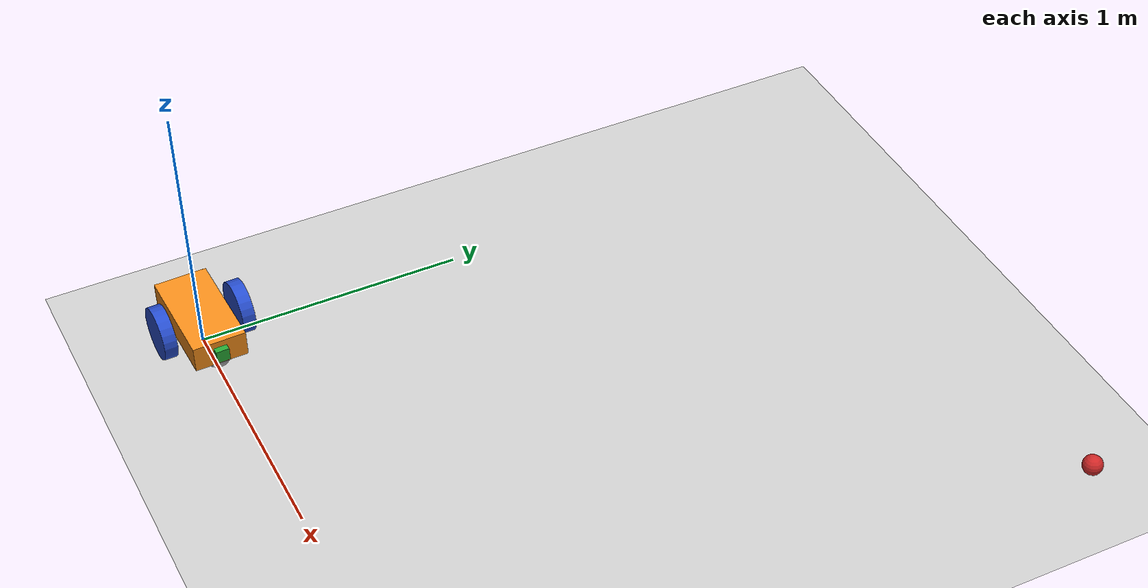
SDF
<sdf version="1.6">
 <world name="default">
  <model name="ground_plane">
   <static>1</static>
   <link name="link">
    <collision name="collision">
     <geometry><plane><normal>0 0 1</normal><size>100 100</size></plane></geometry>
     <surface><friction><ode><mu>100</mu><mu2>50</mu2></ode></friction></surface>
    </collision>
    <visual name="visual">
     <cast_shadows>0</cast_shadows>
     <geometry><plane><normal>0 0 1</normal><size>100 100</size></plane></geometry>
     <material>
      <script><uri>file://media/materials/scripts/gazebo.material</uri><name>Gazebo/Grey</name></script>
     </material>
    </visual>
   </link>
  </model>
  <light name="sun" type="directional">
   <pose>0 0 10 0 -0 0</pose>
   <diffuse>0.8 0.8 0.8 1</diffuse>
   <specular>0.2 0.2 0.2 1</specular>
   <attenuation>
    <range>1000</range>
    <constant>0.9</constant>
    <linear>0.01</linear>
    <quadratic>0.001</quadratic>
   </attenuation>
   <direction>-0.5 0.1 -0.9</direction>
  </light>
  <gravity>0 0 -9.8</gravity>
  <magnetic_field>6e-06 2.3e-05 -4.2e-05</magnetic_field>
  <atmosphere type="adiabatic"/>
  <physics name="default_physics" default="0" type="ode">
   <max_step_size>0.001</max_step_size>
   <real_time_factor>1</real_time_factor>
   <real_time_update_rate>1000</real_time_update_rate>
  </physics>
  <scene><ambient>0.4 0.4 0.4 1</ambient><background>0.7 0.7 0.7 1</background><shadows>1</shadows></scene>
  <spherical_coordinates>
   <surface_model>EARTH_WGS84</surface_model>
   <latitude_deg>0</latitude_deg>
   <longitude_deg>0</longitude_deg>
   <elevation>0</elevation>
   <heading_deg>0</heading_deg>
  </spherical_coordinates>
  <model name="myrobot">
   <link name="chassis">
    <inertial>
     <pose>0.001325 0 0.099338 0 -0 0</pose>
     <mass>15.1</mass>
     <inertia>
      <ixx>0.100994</ixx>
      <ixy>0</ixy>
      <ixz>0.00198675</ixz>
      <iyy>0.104968</iyy>
      <iyz>0</iyz>
      <izz>0.103975</izz>
     </inertia>
    </inertial>
    <collision name="chassis_fixed_joint_lump__collision_collision">
     <geometry><box><size>0.4 0.2 0.1</size></box></geometry>
    </collision>
    <collision name="chassis_fixed_joint_lump__caster_collision_collision_1">
     <pose>-0.15 0 -0.05 0 -0 0</pose>
     <geometry><sphere><radius>0.05</radius></sphere></geometry>
    </collision>
    <collision name="chassis_fixed_joint_lump__caster_front_collision_collision_2">
     <pose>0.15 0 -0.05 0 -0 0</pose>
     <geometry><sphere><radius>0.05</radius></sphere></geometry>
    </collision>
    <collision name="chassis_fixed_joint_lump__camera_collision_3">
     <pose>0.2 0 0 0 -0 0</pose>
     <geometry><box><size>0.05 0.05 0.05</size></box></geometry>
    </collision>
    <visual name="chassis_visual_visual">
     <geometry><box><size>0.4 0.2 0.1</size></box></geometry>
     <material>
      <script><name>Gazebo/Orange</name><uri>file://media/materials/scripts/gazebo.material</uri></script>
     </material>
    </visual>
    <visual name="chassis_fixed_joint_lump__caster_visual_visual_1">
     <pose>-0.15 0 -0.05 0 -0 0</pose>
     <geometry><sphere><radius>0.05</radius></sphere></geometry>
    </visual>
    <visual name="chassis_fixed_joint_lump__caster_front_visual_visual_2">
     <pose>0.15 0 -0.05 0 -0 0</pose>
     <geometry><sphere><radius>0.05</radius></sphere></geometry>
    </visual>
    <visual name="chassis_fixed_joint_lump__camera_visual_3">
     <pose>0.2 0 0 0 -0 0</pose>
     <geometry><box><size>0.05 0.05 0.05</size></box></geometry>
     <material>
      <script><name>Gazebo/Green</name><uri>file://media/materials/scripts/gazebo.material</uri></script>
     </material>
    </visual>
    <sensor name="camera1" type="camera">
     <update_rate>30</update_rate>
     <camera name="head">
      <horizontal_fov>1.39626</horizontal_fov>
      <image><width>800</width><height>800</height><format>R8G8B8</format></image>
      <clip><near>0.02</near><far>300</far></clip>
     </camera>
     <plugin name="camera_controller" filename="libgazebo_ros_camera.so">
      <alwaysOn>true</alwaysOn>
      <updateRate>0.0</updateRate>
      <cameraName>mybot/camera1</cameraName>
      <imageTopicName>image_raw</imageTopicName>
      <cameraInfoTopicName>camera_info</cameraInfoTopicName>
      <frameName>camera</frameName>
      <hackBaseline>0.07</hackBaseline>
      <distortionK1>0.0</distortionK1>
      <distortionK2>0.0</distortionK2>
      <distortionK3>0.0</distortionK3>
      <distortionT1>0.0</distortionT1>
      <distortionT2>0.0</distortionT2>
      <robotNamespace>/</robotNamespace>
     </plugin>
     <pose>0.2 0 0 0 -0 0</pose>
    </sensor>
   </link>
   <link name="left_wheel">
    <pose>0 0.15 0 0 -0 0</pose>
    <inertial>
     <pose>0 0 0 -0 1.5707 1.5707</pose>
     <mass>5</mass>
     <inertia><ixx>0.1</ixx><ixy>0</ixy><ixz>0</ixz><iyy>0.1</iyy><iyz>0</iyz><izz>0.1</izz></inertia>
    </inertial>
    <collision name="left_wheel_fixed_joint_lump__collision_collision">
     <pose>0 0 0 -0 1.5707 1.5707</pose>
     <geometry><cylinder><length>0.05</length><radius>0.1</radius></cylinder></geometry>
    </collision>
    <visual name="left_wheel_visual_visual">
     <pose>0 0 0 -0 1.5707 1.5707</pose>
     <geometry><cylinder><length>0.05</length><radius>0.1</radius></cylinder></geometry>
     <material>
      <script><name>Gazebo/Blue</name><uri>file://media/materials/scripts/gazebo.material</uri></script>
     </material>
    </visual>
   </link>
   <joint name="left_wheel_hinge" type="revolute">
    <child>left_wheel</child>
    <parent>chassis</parent>
    <axis>
     <xyz>0 1 0</xyz>
     <limit><lower>-1e+16</lower><upper>1e+16</upper></limit>
     <dynamics><spring_reference>0</spring_reference><spring_stiffness>0</spring_stiffness></dynamics>
     <use_parent_model_frame>1</use_parent_model_frame>
    </axis>
   </joint>
   <link name="right_wheel">
    <pose>0 -0.15 0 0 -0 0</pose>
    <inertial>
     <pose>0 0 0 -0 1.5707 1.5707</pose>
     <mass>5</mass>
     <inertia><ixx>0.1</ixx><ixy>0</ixy><ixz>0</ixz><iyy>0.1</iyy><iyz>0</iyz><izz>0.1</izz></inertia>
    </inertial>
    <collision name="right_wheel_fixed_joint_lump__collision_collision">
     <pose>0 0 0 -0 1.5707 1.5707</pose>
     <geometry><cylinder><length>0.05</length><radius>0.1</radius></cylinder></geometry>
    </collision>
    <visual name="right_wheel_visual_visual">
     <pose>0 0 0 -0 1.5707 1.5707</pose>
     <geometry><cylinder><length>0.05</length><radius>0.1</radius></cylinder></geometry>
     <material>
      <script><name>Gazebo/Blue</name><uri>file://media/materials/scripts/gazebo.material</uri></script>
     </material>
    </visual>
   </link>
   <joint name="right_wheel_hinge" type="revolute">
    <child>right_wheel</child>
    <parent>chassis</parent>
    <axis>
     <xyz>0 1 0</xyz>
     <limit><lower>-1e+16</lower><upper>1e+16</upper></limit>
     <dynamics><spring_reference>0</spring_reference><spring_stiffness>0</spring_stiffness></dynamics>
     <use_parent_model_frame>1</use_parent_model_frame>
    </axis>
   </joint>
   <static>0</static>
   <plugin name="differential_drive_controller" filename="libgazebo_ros_diff_drive.so">
    <legacyMode>false</legacyMode>
    <alwaysOn>true</alwaysOn>
    <updateRate>10</updateRate>
    <leftJoint>left_wheel_hinge</leftJoint>
    <rightJoint>right_wheel_hinge</rightJoint>
    <wheelSeparation>0.4</wheelSeparation>
    <wheelDiameter>0.2</wheelDiameter>
    <torque>10</torque>
    <commandTopic>cmd_vel</commandTopic>
    <odometryTopic>odom</odometryTopic>
    <odometryFrame>odom</odometryFrame>
    <robotBaseFrame>chassis</robotBaseFrame>
    <robotNamespace>/</robotNamespace>
   </plugin>
   <pose>-0.001741 0.004607 0.100002 -1e-06 1.4e-05 0.024851</pose>
  </model>
  <model name="cricket_ball">
   <link name="link">
    <pose>0 0 0.0375 0 -0 0</pose>
    <inertial>
     <mass>0.1467</mass>
     <inertia>
      <ixx>8.25187e-05</ixx>
      <ixy>0</ixy>
      <ixz>0</ixz>
      <iyy>8.25187e-05</iyy>
      <iyz>0</iyz>
      <izz>8.25187e-05</izz>
     </inertia>
    </inertial>
    <collision name="collision">
     <geometry><sphere><radius>0.0375</radius></sphere></geometry>
     <surface>
      <contact>
       <poissons_ratio>0.347</poissons_ratio>
       <elastic_modulus>8.8e+09</elastic_modulus>
       <ode><kp>100000</kp><kd>100</kd><max_vel>100</max_vel><min_depth>0.001</min_depth></ode>
      </contact>
      <friction>
       <torsional>
        <coefficient>1</coefficient>
        <use_patch_radius>0</use_patch_radius>
        <surface_radius>0.01</surface_radius>
       </torsional>
      </friction>
     </surface>
    </collision>
    <visual name="visual">
     <geometry><sphere><radius>0.0375</radius></sphere></geometry>
     <material>
      <script><uri>file://media/materials/scripts/gazebo.material</uri><name>Gazebo/Red</name></script>
     </material>
    </visual>
    <velocity_decay><linear>0</linear><angular>0.005</angular></velocity_decay>
   </link>
   <pose>2.02391 2.50724 -0.001014 0 -0 0</pose>
  </model>
 </world>
</sdf>
